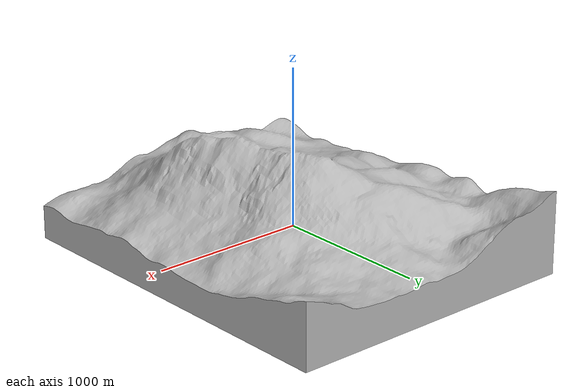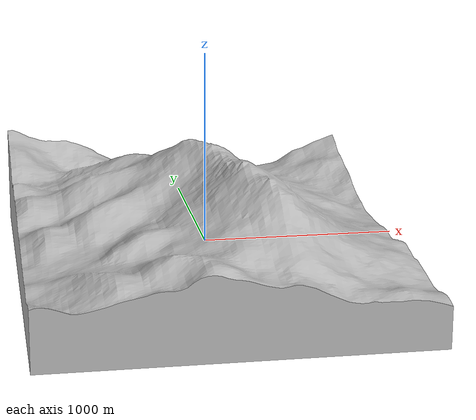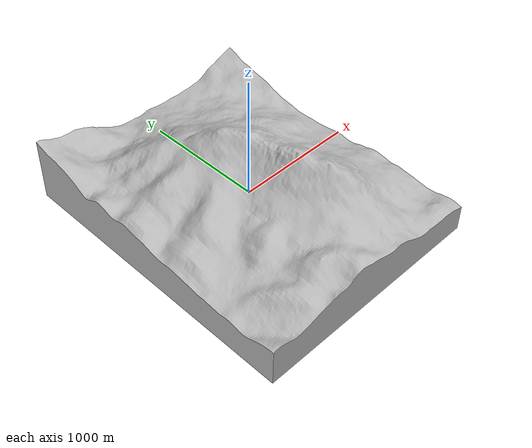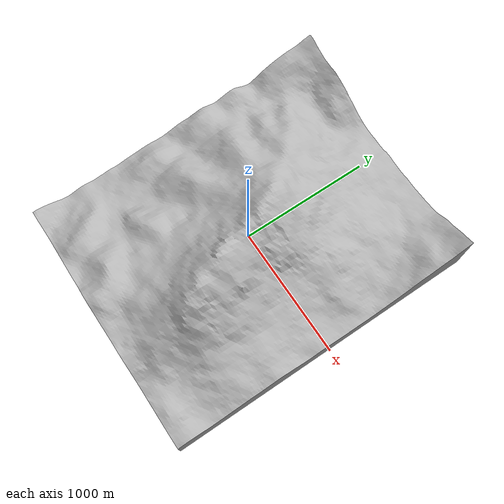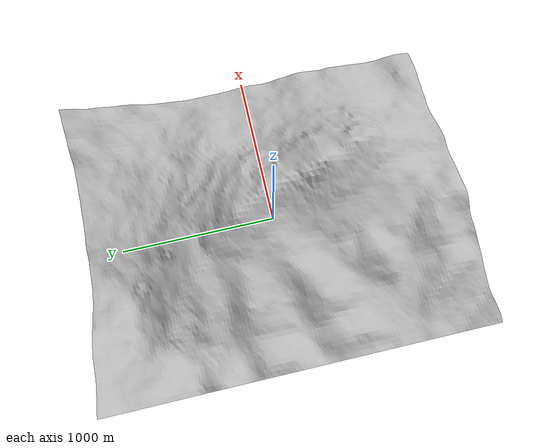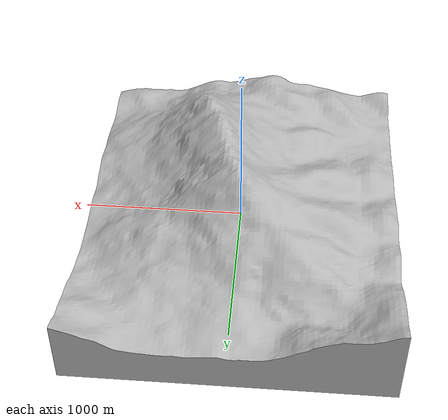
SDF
<?xml version="1.0" ?>
<sdf version="1.8">
  <world name="test_mat">
    <plugin filename="gz-sim-physics-system" name="gz::sim::systems::Physics" />
    <plugin filename="gz-sim-scene-broadcaster-system" name="gz::sim::systems::SceneBroadcaster" />
    <light type="directional" name="sun">
      <cast_shadows>true</cast_shadows>
      <pose>0 0 1000 0.4 0.6 0</pose>
      <diffuse>0.9 0.9 0.9 1</diffuse>
      <direction>-0.4 0.3 -0.85</direction>
    </light>
    <model name="m">
      <static>true</static>
      <link name="l">
        <visual name="v">
          <geometry>
            <mesh>
              <uri>/home/ubuntu/sih_ws/install/small_mountain_world/share/small_mountain_world/meshes/small_mountain_visual.obj</uri>
            </mesh>
          </geometry>
          <material>
            <pbr>
              <metal>
                <albedo_map>/home/ubuntu/sih_ws/install/small_mountain_world/share/small_mountain_world/textures/overlay.png</albedo_map>
                <roughness>0.85</roughness>
                <metalness>0.05</metalness>
              </metal>
            </pbr>
          </material>
        </visual>
      </link>
    </model>
  </world>
</sdf>
